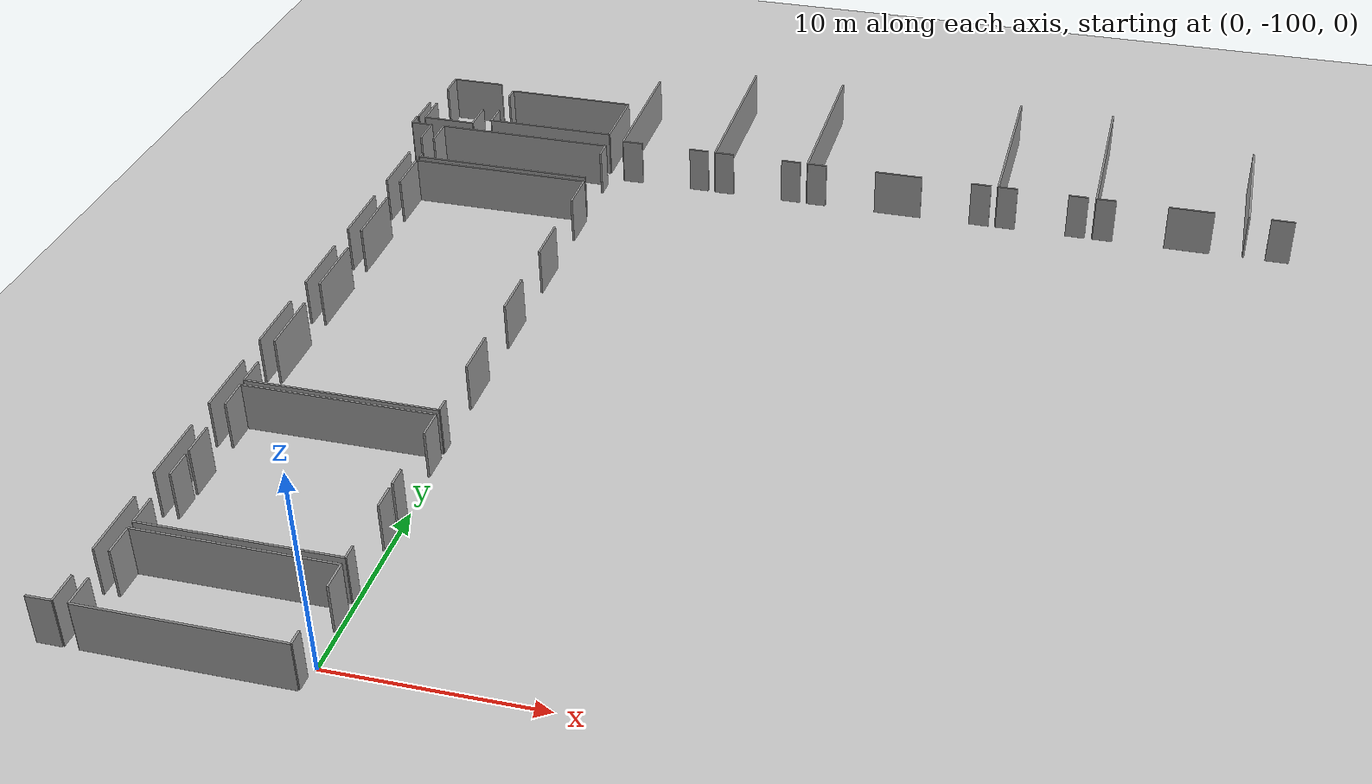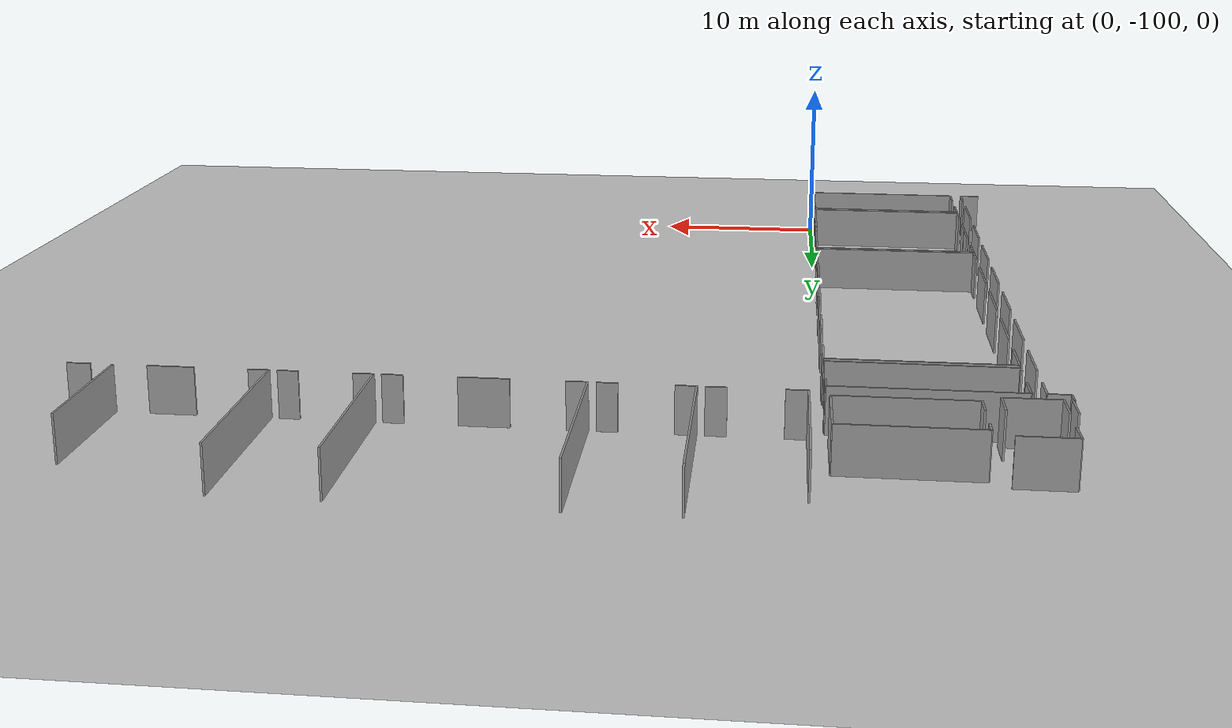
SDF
<sdf version="1.6">
 <world name="default">
  <model name="ground_plane">
   <static>1</static>
   <link name="link">
    <collision name="collision">
     <geometry><plane><normal>0 0 1</normal><size>100 100</size></plane></geometry>
     <surface><friction><ode><mu>100</mu><mu2>50</mu2></ode></friction></surface>
    </collision>
    <visual name="visual">
     <cast_shadows>0</cast_shadows>
     <geometry><plane><normal>0 0 1</normal><size>100 100</size></plane></geometry>
     <material>
      <script><uri>file://media/materials/scripts/gazebo.material</uri><name>Gazebo/Grey</name></script>
     </material>
    </visual>
   </link>
  </model>
  <model name="0510045922_A-40">
   <static>1</static>
   <link name="Wall_1500">
    <collision name="Wall_1500_Collision">
     <geometry><box><size>7.46851369384 0.1 2.5</size></box></geometry>
     <pose>3.73425684692 0 1.25 0 0 0</pose>
    </collision>
    <visual name="Wall_1500_Visual">
     <pose>3.73425684692 0 1.25 0 0 0</pose>
     <geometry><box><size>7.46851369384 0.1 2.5</size></box></geometry>
     <material>
      <script><uri>file://media/materials/scripts/gazebo.material</uri><name>Gazebo/Grey</name></script>
      <ambient>1 1 1 1</ambient>
     </material>
    </visual>
    <pose>134.74186948 -160.614195844 0 0 0 1.57079632679</pose>
   </link>
   <link name="Wall_1505">
    <collision name="Wall_1505_Collision">
     <geometry><box><size>1.0609391879 0.1 2.5</size></box></geometry>
     <pose>0.530469593951 0 1.25 0 0 0</pose>
    </collision>
    <visual name="Wall_1505_Visual">
     <pose>0.530469593951 0 1.25 0 0 0</pose>
     <geometry><box><size>1.0609391879 0.1 2.5</size></box></geometry>
     <material>
      <script><uri>file://media/materials/scripts/gazebo.material</uri><name>Gazebo/Grey</name></script>
      <ambient>1 1 1 1</ambient>
     </material>
    </visual>
    <pose>139.648014234 -160.59513249 0 0 0 3.14159265359</pose>
   </link>
   <link name="Wall_1506">
    <collision name="Wall_1506_Collision">
     <geometry><box><size>1.10253502987 0.1 2.5</size></box></geometry>
     <pose>0.551267514935 0 1.25 0 0 0</pose>
    </collision>
    <visual name="Wall_1506_Visual">
     <pose>0.551267514935 0 1.25 0 0 0</pose>
     <geometry><box><size>1.10253502987 0.1 2.5</size></box></geometry>
     <material>
      <script><uri>file://media/materials/scripts/gazebo.material</uri><name>Gazebo/Grey</name></script>
      <ambient>1 1 1 1</ambient>
     </material>
    </visual>
    <pose>135.84423969 -160.59513249 0 0 0 -3.12430131739</pose>
   </link>
   <link name="Wall_1507">
    <collision name="Wall_1507_Collision">
     <geometry><box><size>9.61174302599 0.1 2.5</size></box></geometry>
     <pose>4.80587151299 0 1.25 0 0 0</pose>
    </collision>
    <visual name="Wall_1507_Visual">
     <pose>4.80587151299 0 1.25 0 0 0</pose>
     <geometry><box><size>9.61174302599 0.1 2.5</size></box></geometry>
     <material>
      <script><uri>file://media/materials/scripts/gazebo.material</uri><name>Gazebo/Grey</name></script>
      <ambient>1 1 1 1</ambient>
     </material>
    </visual>
    <pose>140.048853022 -160.615975091 0 0 0 1.57079632679</pose>
   </link>
   <link name="Wall_1511">
    <collision name="Wall_1511_Collision">
     <geometry><box><size>1.05839740738 0.1 2.5</size></box></geometry>
     <pose>0.529198703692 0 1.25 0 0 0</pose>
    </collision>
    <visual name="Wall_1511_Visual">
     <pose>0.529198703692 0 1.25 0 0 0</pose>
     <geometry><box><size>1.05839740738 0.1 2.5</size></box></geometry>
     <material>
      <script><uri>file://media/materials/scripts/gazebo.material</uri><name>Gazebo/Grey</name></script>
      <ambient>1 1 1 1</ambient>
     </material>
    </visual>
    <pose>144.869593951 -160.597928449 0 0 0 3.14159265359</pose>
   </link>
   <link name="Wall_1512">
    <collision name="Wall_1512_Collision">
     <geometry><box><size>1.04101555836 0.1 2.5</size></box></geometry>
     <pose>0.520507779178 0 1.25 0 0 0</pose>
    </collision>
    <visual name="Wall_1512_Visual">
     <pose>0.520507779178 0 1.25 0 0 0</pose>
     <geometry><box><size>1.04101555836 0.1 2.5</size></box></geometry>
     <material>
      <script><uri>file://media/materials/scripts/gazebo.material</uri><name>Gazebo/Grey</name></script>
      <ambient>1 1 1 1</ambient>
     </material>
    </visual>
    <pose>141.089712143 -160.597928449 0 0 0 -3.12425617331</pose>
   </link>
   <link name="Wall_1513">
    <collision name="Wall_1513_Collision">
     <geometry><box><size>9.62902713351 0.1 2.5</size></box></geometry>
     <pose>4.81451356675 0 1.25 0 0 0</pose>
    </collision>
    <visual name="Wall_1513_Visual">
     <pose>4.81451356675 0 1.25 0 0 0</pose>
     <geometry><box><size>9.62902713351 0.1 2.5</size></box></geometry>
     <material>
      <script><uri>file://media/materials/scripts/gazebo.material</uri><name>Gazebo/Grey</name></script>
      <ambient>1 1 1 1</ambient>
     </material>
    </visual>
    <pose>145.278312258 -160.613179132 0 0 0 1.57079632679</pose>
   </link>
   <link name="Wall_1518">
    <collision name="Wall_1518_Collision">
     <geometry><box><size>1.07161466607 0.1 2.5</size></box></geometry>
     <pose>0.535807333037 0 1.25 0 0 0</pose>
    </collision>
    <visual name="Wall_1518_Visual">
     <pose>0.535807333037 0 1.25 0 0 0</pose>
     <geometry><box><size>1.07161466607 0.1 2.5</size></box></geometry>
     <material>
      <script><uri>file://media/materials/scripts/gazebo.material</uri><name>Gazebo/Grey</name></script>
      <ambient>1 1 1 1</ambient>
     </material>
    </visual>
    <pose>155.376297897 -160.609620639 0 0 0 3.14159265359</pose>
   </link>
   <link name="Wall_1519">
    <collision name="Wall_1519_Collision">
     <geometry><box><size>2.55601448815 0.1 2.5</size></box></geometry>
     <pose>1.27800724407 0 1.25 0 0 0</pose>
    </collision>
    <visual name="Wall_1519_Visual">
     <pose>1.27800724407 0 1.25 0 0 0</pose>
     <geometry><box><size>2.55601448815 0.1 2.5</size></box></geometry>
     <material>
      <script><uri>file://media/materials/scripts/gazebo.material</uri><name>Gazebo/Grey</name></script>
      <ambient>1 1 1 1</ambient>
     </material>
    </visual>
    <pose>151.615479443 -160.609620639 0 0 0 3.14159265359</pose>
   </link>
   <link name="Wall_1520">
    <collision name="Wall_1520_Collision">
     <geometry><box><size>1.05459074031 0.1 2.5</size></box></geometry>
     <pose>0.527295370157 0 1.25 0 0 0</pose>
    </collision>
    <visual name="Wall_1520_Visual">
     <pose>0.527295370157 0 1.25 0 0 0</pose>
     <geometry><box><size>1.05459074031 0.1 2.5</size></box></geometry>
     <material>
      <script><uri>file://media/materials/scripts/gazebo.material</uri><name>Gazebo/Grey</name></script>
      <ambient>1 1 1 1</ambient>
     </material>
    </visual>
    <pose>146.332896994 -160.609620639 0 0 0 -3.13821835933</pose>
   </link>
   <link name="Wall_1521">
    <collision name="Wall_1521_Collision">
     <geometry><box><size>9.59217131601 0.1 2.5</size></box></geometry>
     <pose>4.796085658 0 1.25 0 0 0</pose>
    </collision>
    <visual name="Wall_1521_Visual">
     <pose>4.796085658 0 1.25 0 0 0</pose>
     <geometry><box><size>9.59217131601 0.1 2.5</size></box></geometry>
     <material>
      <script><uri>file://media/materials/scripts/gazebo.material</uri><name>Gazebo/Grey</name></script>
      <ambient>1 1 1 1</ambient>
     </material>
    </visual>
    <pose>155.755785728 -160.597928449 0 0 0 1.57079632679</pose>
   </link>
   <link name="Wall_1525">
    <collision name="Wall_1525_Collision">
     <geometry><box><size>1.05560144881 0.1 2.5</size></box></geometry>
     <pose>0.527800724407 0 1.25 0 0 0</pose>
    </collision>
    <visual name="Wall_1525_Visual">
     <pose>0.527800724407 0 1.25 0 0 0</pose>
     <geometry><box><size>1.05560144881 0.1 2.5</size></box></geometry>
     <material>
      <script><uri>file://media/materials/scripts/gazebo.material</uri><name>Gazebo/Grey</name></script>
      <ambient>1 1 1 1</ambient>
     </material>
    </visual>
    <pose>160.581610218 -160.601995298 0 0 0 3.14159265359</pose>
   </link>
   <link name="Wall_1526">
    <collision name="Wall_1526_Collision">
     <geometry><box><size>1.04010453846 0.1 2.5</size></box></geometry>
     <pose>0.520052269229 0 1.25 0 0 0</pose>
    </collision>
    <visual name="Wall_1526_Visual">
     <pose>0.520052269229 0 1.25 0 0 0</pose>
     <geometry><box><size>1.04010453846 0.1 2.5</size></box></geometry>
     <material>
      <script><uri>file://media/materials/scripts/gazebo.material</uri><name>Gazebo/Grey</name></script>
      <ambient>1 1 1 1</ambient>
     </material>
    </visual>
    <pose>156.795882316 -160.601995298 0 0 0 3.13768260509</pose>
   </link>
   <link name="Wall_1527">
    <collision name="Wall_1527_Collision">
     <geometry><box><size>9.61301391625 0.1 2.5</size></box></geometry>
     <pose>4.80650695812 0 1.25 0 0 0</pose>
    </collision>
    <visual name="Wall_1527_Visual">
     <pose>4.80650695812 0 1.25 0 0 0</pose>
     <geometry><box><size>9.61301391625 0.1 2.5</size></box></geometry>
     <material>
      <script><uri>file://media/materials/scripts/gazebo.material</uri><name>Gazebo/Grey</name></script>
      <ambient>1 1 1 1</ambient>
     </material>
    </visual>
    <pose>160.998716401 -160.608603927 0 0 0 1.57079632679</pose>
   </link>
   <link name="Wall_1533">
    <collision name="Wall_1533_Collision">
     <geometry><box><size>2.40528690348 0.1 2.5</size></box></geometry>
     <pose>1.20264345174 0 1.25 0 0 0</pose>
    </collision>
    <visual name="Wall_1533_Visual">
     <pose>1.20264345174 0 1.25 0 0 0</pose>
     <geometry><box><size>2.40528690348 0.1 2.5</size></box></geometry>
     <material>
      <script><uri>file://media/materials/scripts/gazebo.material</uri><name>Gazebo/Grey</name></script>
      <ambient>1 1 1 1</ambient>
     </material>
    </visual>
    <pose>167.185156002 -160.583186122 0 0 0 3.14159265359</pose>
   </link>
   <link name="Wall_1534">
    <collision name="Wall_1534_Collision">
     <geometry><box><size>1.05158765225 0.1 2.5</size></box></geometry>
     <pose>0.525793826125 0 1.25 0 0 0</pose>
    </collision>
    <visual name="Wall_1534_Visual">
     <pose>0.525793826125 0 1.25 0 0 0</pose>
     <geometry><box><size>1.05158765225 0.1 2.5</size></box></geometry>
     <material>
      <script><uri>file://media/materials/scripts/gazebo.material</uri><name>Gazebo/Grey</name></script>
      <ambient>1 1 1 1</ambient>
     </material>
    </visual>
    <pose>162.049996823 -160.583186122 0 0 0 -3.11741941349</pose>
   </link>
   <link name="Wall_1535">
    <collision name="Wall_1535_Collision">
     <geometry><box><size>1.23606786554 0.1 2.5</size></box></geometry>
     <pose>0.61803393277 0 1.25 0 0 0</pose>
    </collision>
    <visual name="Wall_1535_Visual">
     <pose>0.61803393277 0 1.25 0 0 0</pose>
     <geometry><box><size>1.23606786554 0.1 2.5</size></box></geometry>
     <material>
      <script><uri>file://media/materials/scripts/gazebo.material</uri><name>Gazebo/Grey</name></script>
      <ambient>1 1 1 1</ambient>
     </material>
    </visual>
    <pose>171.310719959 -160.568189617 0 0 0 3.14159265359</pose>
   </link>
   <link name="Wall_1536">
    <collision name="Wall_1536_Collision">
     <geometry><box><size>6.88542924318 0.1 2.5</size></box></geometry>
     <pose>3.44271462159 0 1.25 0 0 0</pose>
    </collision>
    <visual name="Wall_1536_Visual">
     <pose>3.44271462159 0 1.25 0 0 0</pose>
     <geometry><box><size>6.88542924318 0.1 2.5</size></box></geometry>
     <material>
      <script><uri>file://media/materials/scripts/gazebo.material</uri><name>Gazebo/Grey</name></script>
      <ambient>1 1 1 1</ambient>
     </material>
    </visual>
    <pose>168.943813942 -160.568189617 0 0 0 1.57079632679</pose>
   </link>
   <link name="Wall_1753">
    <collision name="Wall_1753_Collision">
     <geometry><box><size>1.57361631823 0.1 2.5</size></box></geometry>
     <pose>0.786808159115 0 1.25 0 0 0</pose>
    </collision>
    <visual name="Wall_1753_Visual">
     <pose>0.786808159115 0 1.25 0 0 0</pose>
     <geometry><box><size>1.57361631823 0.1 2.5</size></box></geometry>
     <material>
      <script><uri>file://media/materials/scripts/gazebo.material</uri><name>Gazebo/Grey</name></script>
      <ambient>1 1 1 1</ambient>
     </material>
    </visual>
    <pose>124.356154286 -202.441990214 0 0 0 1.57079632679</pose>
   </link>
   <link name="Wall_1754">
    <collision name="Wall_1754_Collision">
     <geometry><box><size>1.56243248396 0.1 2.5</size></box></geometry>
     <pose>0.781216241978 0 1.25 0 0 0</pose>
    </collision>
    <visual name="Wall_1754_Visual">
     <pose>0.781216241978 0 1.25 0 0 0</pose>
     <geometry><box><size>1.56243248396 0.1 2.5</size></box></geometry>
     <material>
      <script><uri>file://media/materials/scripts/gazebo.material</uri><name>Gazebo/Grey</name></script>
      <ambient>1 1 1 1</ambient>
     </material>
    </visual>
    <pose>124.356154286 -199.202236767 0 0 0 1.57079632679</pose>
   </link>
   <link name="Wall_1755">
    <collision name="Wall_1755_Collision">
     <geometry><box><size>9.59395056237 0.1 2.5</size></box></geometry>
     <pose>4.79697528118 0 1.25 0 0 0</pose>
    </collision>
    <visual name="Wall_1755_Visual">
     <pose>4.79697528118 0 1.25 0 0 0</pose>
     <geometry><box><size>9.59395056237 0.1 2.5</size></box></geometry>
     <material>
      <script><uri>file://media/materials/scripts/gazebo.material</uri><name>Gazebo/Grey</name></script>
      <ambient>1 1 1 1</ambient>
     </material>
    </visual>
    <pose>124.356154286 -197.639804283 0 0 0 0.0</pose>
   </link>
   <link name="Wall_1756">
    <collision name="Wall_1756_Collision">
     <geometry><box><size>1.38349113554 0.1 2.5</size></box></geometry>
     <pose>0.69174556777 0 1.25 0 0 0</pose>
    </collision>
    <visual name="Wall_1756_Visual">
     <pose>0.69174556777 0 1.25 0 0 0</pose>
     <geometry><box><size>1.38349113554 0.1 2.5</size></box></geometry>
     <material>
      <script><uri>file://media/materials/scripts/gazebo.material</uri><name>Gazebo/Grey</name></script>
      <ambient>1 1 1 1</ambient>
     </material>
    </visual>
    <pose>133.950104848 -197.639804283 0 0 0 -1.57079632679</pose>
   </link>
   <link name="Wall_1757">
    <collision name="Wall_1757_Collision">
     <geometry><box><size>0.772955455296 0.1 2.5</size></box></geometry>
     <pose>0.386477727648 0 1.25 0 0 0</pose>
    </collision>
    <visual name="Wall_1757_Visual">
     <pose>0.386477727648 0 1.25 0 0 0</pose>
     <geometry><box><size>0.772955455296 0.1 2.5</size></box></geometry>
     <material>
      <script><uri>file://media/materials/scripts/gazebo.material</uri><name>Gazebo/Grey</name></script>
      <ambient>1 1 1 1</ambient>
     </material>
    </visual>
    <pose>133.950104848 -201.687081401 0 0 0 -1.57079632679</pose>
   </link>
   <link name="Wall_1758">
    <collision name="Wall_1758_Collision">
     <geometry><box><size>9.59396753562 0.1 2.5</size></box></geometry>
     <pose>4.79698376781 0 1.25 0 0 0</pose>
    </collision>
    <visual name="Wall_1758_Visual">
     <pose>4.79698376781 0 1.25 0 0 0</pose>
     <geometry><box><size>9.59396753562 0.1 2.5</size></box></geometry>
     <material>
      <script><uri>file://media/materials/scripts/gazebo.material</uri><name>Gazebo/Grey</name></script>
      <ambient>1 1 1 1</ambient>
     </material>
    </visual>
    <pose>133.950104848 -202.460036856 0 0 0 3.13971161196</pose>
   </link>
   <link name="Wall_1759">
    <collision name="Wall_1759_Collision">
     <geometry><box><size>1.55658638877 0.1 2.5</size></box></geometry>
     <pose>0.778293194383 0 1.25 0 0 0</pose>
    </collision>
    <visual name="Wall_1759_Visual">
     <pose>0.778293194383 0 1.25 0 0 0</pose>
     <geometry><box><size>1.55658638877 0.1 2.5</size></box></geometry>
     <material>
      <script><uri>file://media/materials/scripts/gazebo.material</uri><name>Gazebo/Grey</name></script>
      <ambient>1 1 1 1</ambient>
     </material>
    </visual>
    <pose>124.363271272 -197.218885429 0 0 0 1.57079632679</pose>
   </link>
   <link name="Wall_1760">
    <collision name="Wall_1760_Collision">
     <geometry><box><size>1.44144373133 0.1 2.5</size></box></geometry>
     <pose>0.720721865667 0 1.25 0 0 0</pose>
    </collision>
    <visual name="Wall_1760_Visual">
     <pose>0.720721865667 0 1.25 0 0 0</pose>
     <geometry><box><size>1.44144373133 0.1 2.5</size></box></geometry>
     <material>
      <script><uri>file://media/materials/scripts/gazebo.material</uri><name>Gazebo/Grey</name></script>
      <ambient>1 1 1 1</ambient>
     </material>
    </visual>
    <pose>124.363271272 -193.955239245 0 0 0 1.57079632679</pose>
   </link>
   <link name="Wall_1761">
    <collision name="Wall_1761_Collision">
     <geometry><box><size>1.2741945733 0.1 2.5</size></box></geometry>
     <pose>0.637097286649 0 1.25 0 0 0</pose>
    </collision>
    <visual name="Wall_1761_Visual">
     <pose>0.637097286649 0 1.25 0 0 0</pose>
     <geometry><box><size>1.2741945733 0.1 2.5</size></box></geometry>
     <material>
      <script><uri>file://media/materials/scripts/gazebo.material</uri><name>Gazebo/Grey</name></script>
      <ambient>1 1 1 1</ambient>
     </material>
    </visual>
    <pose>133.94985067 -192.513795514 0 0 0 -1.57079632679</pose>
   </link>
   <link name="Wall_1762">
    <collision name="Wall_1762_Collision">
     <geometry><box><size>0.754654635572 0.1 2.5</size></box></geometry>
     <pose>0.377327317786 0 1.25 0 0 0</pose>
    </collision>
    <visual name="Wall_1762_Visual">
     <pose>0.377327317786 0 1.25 0 0 0</pose>
     <geometry><box><size>0.754654635572 0.1 2.5</size></box></geometry>
     <material>
      <script><uri>file://media/materials/scripts/gazebo.material</uri><name>Gazebo/Grey</name></script>
      <ambient>1 1 1 1</ambient>
     </material>
    </visual>
    <pose>133.94985067 -196.458893055 0 0 0 -1.57079632679</pose>
   </link>
   <link name="Wall_1763">
    <collision name="Wall_1763_Collision">
     <geometry><box><size>9.58658088488 0.1 2.5</size></box></geometry>
     <pose>4.79329044244 0 1.25 0 0 0</pose>
    </collision>
    <visual name="Wall_1763_Visual">
     <pose>4.79329044244 0 1.25 0 0 0</pose>
     <geometry><box><size>9.58658088488 0.1 2.5</size></box></geometry>
     <material>
      <script><uri>file://media/materials/scripts/gazebo.material</uri><name>Gazebo/Grey</name></script>
      <ambient>1 1 1 1</ambient>
     </material>
    </visual>
    <pose>133.94985067 -197.21354769 0 0 0 -3.14103586077</pose>
   </link>
   <link name="Wall_1764">
    <collision name="Wall_1764_Collision">
     <geometry><box><size>9.59928830146 0.1 2.5</size></box></geometry>
     <pose>4.79964415073 0 1.25 0 0 0</pose>
    </collision>
    <visual name="Wall_1764_Visual">
     <pose>4.79964415073 0 1.25 0 0 0</pose>
     <geometry><box><size>9.59928830146 0.1 2.5</size></box></geometry>
     <material>
      <script><uri>file://media/materials/scripts/gazebo.material</uri><name>Gazebo/Grey</name></script>
      <ambient>1 1 1 1</ambient>
     </material>
    </visual>
    <pose>124.352849971 -187.09090678 0 0 0 0.0</pose>
   </link>
   <link name="Wall_1765">
    <collision name="Wall_1765_Collision">
     <geometry><box><size>1.45771112664 0.1 2.5</size></box></geometry>
     <pose>0.728855563322 0 1.25 0 0 0</pose>
    </collision>
    <visual name="Wall_1765_Visual">
     <pose>0.728855563322 0 1.25 0 0 0</pose>
     <geometry><box><size>1.45771112664 0.1 2.5</size></box></geometry>
     <material>
      <script><uri>file://media/materials/scripts/gazebo.material</uri><name>Gazebo/Grey</name></script>
      <ambient>1 1 1 1</ambient>
     </material>
    </visual>
    <pose>133.952138273 -187.09090678 0 0 0 -1.57079632679</pose>
   </link>
   <link name="Wall_1766">
    <collision name="Wall_1766_Collision">
     <geometry><box><size>1.02052487768 0.1 2.5</size></box></geometry>
     <pose>0.510262438838 0 1.25 0 0 0</pose>
    </collision>
    <visual name="Wall_1766_Visual">
     <pose>0.510262438838 0 1.25 0 0 0</pose>
     <geometry><box><size>1.02052487768 0.1 2.5</size></box></geometry>
     <material>
      <script><uri>file://media/materials/scripts/gazebo.material</uri><name>Gazebo/Grey</name></script>
      <ambient>1 1 1 1</ambient>
     </material>
    </visual>
    <pose>133.952138273 -191.209099574 0 0 0 -1.57079632679</pose>
   </link>
   <link name="Wall_1767">
    <collision name="Wall_1767_Collision">
     <geometry><box><size>1.75306602275 0.1 2.5</size></box></geometry>
     <pose>0.876533011374 0 1.25 0 0 0</pose>
    </collision>
    <visual name="Wall_1767_Visual">
     <pose>0.876533011374 0 1.25 0 0 0</pose>
     <geometry><box><size>1.75306602275 0.1 2.5</size></box></geometry>
     <material>
      <script><uri>file://media/materials/scripts/gazebo.material</uri><name>Gazebo/Grey</name></script>
      <ambient>1 1 1 1</ambient>
     </material>
    </visual>
    <pose>124.372421681 -192.229624452 0 0 0 1.57079632679</pose>
   </link>
   <link name="Wall_1768">
    <collision name="Wall_1768_Collision">
     <geometry><box><size>1.5986455769 0.1 2.5</size></box></geometry>
     <pose>0.799322788452 0 1.25 0 0 0</pose>
    </collision>
    <visual name="Wall_1768_Visual">
     <pose>0.799322788452 0 1.25 0 0 0</pose>
     <geometry><box><size>1.5986455769 0.1 2.5</size></box></geometry>
     <material>
      <script><uri>file://media/materials/scripts/gazebo.material</uri><name>Gazebo/Grey</name></script>
      <ambient>1 1 1 1</ambient>
     </material>
    </visual>
    <pose>124.372421681 -188.689432547 0 0 0 1.58303931499</pose>
   </link>
   <link name="Wall_1769">
    <collision name="Wall_1769_Collision">
     <geometry><box><size>1.47855372689 0.1 2.5</size></box></geometry>
     <pose>0.739276863443 0 1.25 0 0 0</pose>
    </collision>
    <visual name="Wall_1769_Visual">
     <pose>0.739276863443 0 1.25 0 0 0</pose>
     <geometry><box><size>1.47855372689 0.1 2.5</size></box></geometry>
     <material>
      <script><uri>file://media/materials/scripts/gazebo.material</uri><name>Gazebo/Grey</name></script>
      <ambient>1 1 1 1</ambient>
     </material>
    </visual>
    <pose>124.362254559 -186.728703056 0 0 0 1.57079632679</pose>
   </link>
   <link name="Wall_1770">
    <collision name="Wall_1770_Collision">
     <geometry><box><size>3.43496219101 0.1 2.5</size></box></geometry>
     <pose>1.71748109551 0 1.25 0 0 0</pose>
    </collision>
    <visual name="Wall_1770_Visual">
     <pose>1.71748109551 0 1.25 0 0 0</pose>
     <geometry><box><size>3.43496219101 0.1 2.5</size></box></geometry>
     <material>
      <script><uri>file://media/materials/scripts/gazebo.material</uri><name>Gazebo/Grey</name></script>
      <ambient>1 1 1 1</ambient>
     </material>
    </visual>
    <pose>124.362254559 -183.489457965 0 0 0 1.57079632679</pose>
   </link>
   <link name="Wall_1771">
    <collision name="Wall_1771_Collision">
     <geometry><box><size>3.51807841393 0.1 2.5</size></box></geometry>
     <pose>1.75903920696 0 1.25 0 0 0</pose>
    </collision>
    <visual name="Wall_1771_Visual">
     <pose>1.75903920696 0 1.25 0 0 0</pose>
     <geometry><box><size>3.51807841393 0.1 2.5</size></box></geometry>
     <material>
      <script><uri>file://media/materials/scripts/gazebo.material</uri><name>Gazebo/Grey</name></script>
      <ambient>1 1 1 1</ambient>
     </material>
    </visual>
    <pose>124.362254559 -178.282366398 0 0 0 1.57079632679</pose>
   </link>
   <link name="Wall_1772">
    <collision name="Wall_1772_Collision">
     <geometry><box><size>3.48833958188 0.1 2.5</size></box></geometry>
     <pose>1.74416979094 0 1.25 0 0 0</pose>
    </collision>
    <visual name="Wall_1772_Visual">
     <pose>1.74416979094 0 1.25 0 0 0</pose>
     <geometry><box><size>3.48833958188 0.1 2.5</size></box></geometry>
     <material>
      <script><uri>file://media/materials/scripts/gazebo.material</uri><name>Gazebo/Grey</name></script>
      <ambient>1 1 1 1</ambient>
     </material>
    </visual>
    <pose>124.362254559 -173.081629281 0 0 0 1.57079632679</pose>
   </link>
   <link name="Wall_1773">
    <collision name="Wall_1773_Collision">
     <geometry><box><size>2.43985511851 0.1 2.5</size></box></geometry>
     <pose>1.21992755926 0 1.25 0 0 0</pose>
    </collision>
    <visual name="Wall_1773_Visual">
     <pose>1.21992755926 0 1.25 0 0 0</pose>
     <geometry><box><size>2.43985511851 0.1 2.5</size></box></geometry>
     <material>
      <script><uri>file://media/materials/scripts/gazebo.material</uri><name>Gazebo/Grey</name></script>
      <ambient>1 1 1 1</ambient>
     </material>
    </visual>
    <pose>124.362254559 -167.834885938 0 0 0 1.57079632679</pose>
   </link>
   <link name="Wall_1774">
    <collision name="Wall_1774_Collision">
     <geometry><box><size>9.60996377963 0.1 2.5</size></box></geometry>
     <pose>4.80498188981 0 1.25 0 0 0</pose>
    </collision>
    <visual name="Wall_1774_Visual">
     <pose>4.80498188981 0 1.25 0 0 0</pose>
     <geometry><box><size>9.60996377963 0.1 2.5</size></box></geometry>
     <material>
      <script><uri>file://media/materials/scripts/gazebo.material</uri><name>Gazebo/Grey</name></script>
      <ambient>1 1 1 1</ambient>
     </material>
    </visual>
    <pose>124.362254559 -165.395030819 0 0 0 0.0</pose>
   </link>
   <link name="Wall_1775">
    <collision name="Wall_1775_Collision">
     <geometry><box><size>2.15161720785 0.1 2.5</size></box></geometry>
     <pose>1.07580860393 0 1.25 0 0 0</pose>
    </collision>
    <visual name="Wall_1775_Visual">
     <pose>1.07580860393 0 1.25 0 0 0</pose>
     <geometry><box><size>2.15161720785 0.1 2.5</size></box></geometry>
     <material>
      <script><uri>file://media/materials/scripts/gazebo.material</uri><name>Gazebo/Grey</name></script>
      <ambient>1 1 1 1</ambient>
     </material>
    </visual>
    <pose>133.972218339 -165.395030819 0 0 0 -1.57079632679</pose>
   </link>
   <link name="Wall_1776">
    <collision name="Wall_1776_Collision">
     <geometry><box><size>2.49831607041 0.1 2.5</size></box></geometry>
     <pose>1.2491580352 0 1.25 0 0 0</pose>
    </collision>
    <visual name="Wall_1776_Visual">
     <pose>1.2491580352 0 1.25 0 0 0</pose>
     <geometry><box><size>2.49831607041 0.1 2.5</size></box></geometry>
     <material>
      <script><uri>file://media/materials/scripts/gazebo.material</uri><name>Gazebo/Grey</name></script>
      <ambient>1 1 1 1</ambient>
     </material>
    </visual>
    <pose>133.972218339 -170.312359408 0 0 0 -1.57079632679</pose>
   </link>
   <link name="Wall_1777">
    <collision name="Wall_1777_Collision">
     <geometry><box><size>2.55372688568 0.1 2.5</size></box></geometry>
     <pose>1.27686344284 0 1.25 0 0 0</pose>
    </collision>
    <visual name="Wall_1777_Visual">
     <pose>1.27686344284 0 1.25 0 0 0</pose>
     <geometry><box><size>2.55372688568 0.1 2.5</size></box></geometry>
     <material>
      <script><uri>file://media/materials/scripts/gazebo.material</uri><name>Gazebo/Grey</name></script>
      <ambient>1 1 1 1</ambient>
     </material>
    </visual>
    <pose>133.972218339 -175.477765775 0 0 0 -1.57079632679</pose>
   </link>
   <link name="Wall_1778">
    <collision name="Wall_1778_Collision">
     <geometry><box><size>2.5488975027 0.1 2.5</size></box></geometry>
     <pose>1.27444875135 0 1.25 0 0 0</pose>
    </collision>
    <visual name="Wall_1778_Visual">
     <pose>1.27444875135 0 1.25 0 0 0</pose>
     <geometry><box><size>2.5488975027 0.1 2.5</size></box></geometry>
     <material>
      <script><uri>file://media/materials/scripts/gazebo.material</uri><name>Gazebo/Grey</name></script>
      <ambient>1 1 1 1</ambient>
     </material>
    </visual>
    <pose>133.972218339 -180.733659528 0 0 0 -1.57079632679</pose>
   </link>
   <link name="Wall_1779">
    <collision name="Wall_1779_Collision">
     <geometry><box><size>0.733049501176 0.1 2.5</size></box></geometry>
     <pose>0.366524750588 0 1.25 0 0 0</pose>
    </collision>
    <visual name="Wall_1779_Visual">
     <pose>0.366524750588 0 1.25 0 0 0</pose>
     <geometry><box><size>0.733049501176 0.1 2.5</size></box></geometry>
     <material>
      <script><uri>file://media/materials/scripts/gazebo.material</uri><name>Gazebo/Grey</name></script>
      <ambient>1 1 1 1</ambient>
     </material>
    </visual>
    <pose>133.972218339 -186.012175129 0 0 0 -1.57079632679</pose>
   </link>
   <link name="Wall_1780">
    <collision name="Wall_1780_Collision">
     <geometry><box><size>9.60997798167 0.1 2.5</size></box></geometry>
     <pose>4.80498899083 0 1.25 0 0 0</pose>
    </collision>
    <visual name="Wall_1780_Visual">
     <pose>4.80498899083 0 1.25 0 0 0</pose>
     <geometry><box><size>9.60997798167 0.1 2.5</size></box></geometry>
     <material>
      <script><uri>file://media/materials/scripts/gazebo.material</uri><name>Gazebo/Grey</name></script>
      <ambient>1 1 1 1</ambient>
     </material>
    </visual>
    <pose>133.972218339 -186.74522463 0 0 0 3.13987344242</pose>
   </link>
   <link name="Wall_1781">
    <collision name="Wall_1781_Collision">
     <geometry><box><size>9.56827857914 0.1 2.5</size></box></geometry>
     <pose>4.78413928957 0 1.25 0 0 0</pose>
    </collision>
    <visual name="Wall_1781_Visual">
     <pose>4.78413928957 0 1.25 0 0 0</pose>
     <geometry><box><size>9.56827857914 0.1 2.5</size></box></geometry>
     <material>
      <script><uri>file://media/materials/scripts/gazebo.material</uri><name>Gazebo/Grey</name></script>
      <ambient>1 1 1 1</ambient>
     </material>
    </visual>
    <pose>124.363271272 -161.336315689 0 0 0 0.0</pose>
   </link>
   <link name="Wall_1782">
    <collision name="Wall_1782_Collision">
     <geometry><box><size>0.965114062401 0.1 2.5</size></box></geometry>
     <pose>0.4825570312 0 1.25 0 0 0</pose>
    </collision>
    <visual name="Wall_1782_Visual">
     <pose>0.4825570312 0 1.25 0 0 0</pose>
     <geometry><box><size>0.965114062401 0.1 2.5</size></box></geometry>
     <material>
      <script><uri>file://media/materials/scripts/gazebo.material</uri><name>Gazebo/Grey</name></script>
      <ambient>1 1 1 1</ambient>
     </material>
    </visual>
    <pose>133.931549851 -161.336315689 0 0 0 -1.57079632679</pose>
   </link>
   <link name="Wall_1783">
    <collision name="Wall_1783_Collision">
     <geometry><box><size>9.55887399123 0.1 2.5</size></box></geometry>
     <pose>4.77943699562 0 1.25 0 0 0</pose>
    </collision>
    <visual name="Wall_1783_Visual">
     <pose>4.77943699562 0 1.25 0 0 0</pose>
     <geometry><box><size>9.55887399123 0.1 2.5</size></box></geometry>
     <material>
      <script><uri>file://media/materials/scripts/gazebo.material</uri><name>Gazebo/Grey</name></script>
      <ambient>1 1 1 1</ambient>
     </material>
    </visual>
    <pose>133.931549851 -164.993175319 0 0 0 3.14159265359</pose>
   </link>
   <link name="Wall_1784">
    <collision name="Wall_1784_Collision">
     <geometry><box><size>0.401601321726 0.1 2.5</size></box></geometry>
     <pose>0.200800660863 0 1.25 0 0 0</pose>
    </collision>
    <visual name="Wall_1784_Visual">
     <pose>0.200800660863 0 1.25 0 0 0</pose>
     <geometry><box><size>0.401601321726 0.1 2.5</size></box></geometry>
     <material>
      <script><uri>file://media/materials/scripts/gazebo.material</uri><name>Gazebo/Grey</name></script>
      <ambient>1 1 1 1</ambient>
     </material>
    </visual>
    <pose>124.372675859 -164.993175319 0 0 0 1.57079632679</pose>
   </link>
   <link name="Wall_1785">
    <collision name="Wall_1785_Collision">
     <geometry><box><size>1.57262772681 0.1 2.5</size></box></geometry>
     <pose>0.786313863406 0 1.25 0 0 0</pose>
    </collision>
    <visual name="Wall_1785_Visual">
     <pose>0.786313863406 0 1.25 0 0 0</pose>
     <geometry><box><size>1.57262772681 0.1 2.5</size></box></geometry>
     <material>
      <script><uri>file://media/materials/scripts/gazebo.material</uri><name>Gazebo/Grey</name></script>
      <ambient>1 1 1 1</ambient>
     </material>
    </visual>
    <pose>124.372675859 -162.908915295 0 0 0 1.57677653674</pose>
   </link>
   <link name="Wall_1790">
    <collision name="Wall_1790_Collision">
     <geometry><box><size>1.74111965432 0.1 2.5</size></box></geometry>
     <pose>0.870559827159 0 1.25 0 0 0</pose>
    </collision>
    <visual name="Wall_1790_Visual">
     <pose>0.870559827159 0 1.25 0 0 0</pose>
     <geometry><box><size>1.74111965432 0.1 2.5</size></box></geometry>
     <material>
      <script><uri>file://media/materials/scripts/gazebo.material</uri><name>Gazebo/Grey</name></script>
      <ambient>1 1 1 1</ambient>
     </material>
    </visual>
    <pose>122.569790939 -158.865705026 0 0 0 -1.57079632679</pose>
   </link>
   <link name="Wall_1791">
    <collision name="Wall_1791_Collision">
     <geometry><box><size>0.082353688759 0.1 2.5</size></box></geometry>
     <pose>0.0411768443795 0 1.25 0 0 0</pose>
    </collision>
    <visual name="Wall_1791_Visual">
     <pose>0.0411768443795 0 1.25 0 0 0</pose>
     <geometry><box><size>0.082353688759 0.1 2.5</size></box></geometry>
     <material>
      <script><uri>file://media/materials/scripts/gazebo.material</uri><name>Gazebo/Grey</name></script>
      <ambient>1 1 1 1</ambient>
     </material>
    </visual>
    <pose>122.569790939 -160.606824681 0 0 0 3.14159265359</pose>
   </link>
   <link name="Wall_1792">
    <collision name="Wall_1792_Collision">
     <geometry><box><size>0.739149774417 0.1 2.5</size></box></geometry>
     <pose>0.369574887209 0 1.25 0 0 0</pose>
    </collision>
    <visual name="Wall_1792_Visual">
     <pose>0.369574887209 0 1.25 0 0 0</pose>
     <geometry><box><size>0.739149774417 0.1 2.5</size></box></geometry>
     <material>
      <script><uri>file://media/materials/scripts/gazebo.material</uri><name>Gazebo/Grey</name></script>
      <ambient>1 1 1 1</ambient>
     </material>
    </visual>
    <pose>122.48743725 -160.606824681 0 0 0 -1.57079632679</pose>
   </link>
   <link name="Wall_1793">
    <collision name="Wall_1793_Collision">
     <geometry><box><size>1.14405541082 0.1 2.5</size></box></geometry>
     <pose>0.572027705408 0 1.25 0 0 0</pose>
    </collision>
    <visual name="Wall_1793_Visual">
     <pose>0.572027705408 0 1.25 0 0 0</pose>
     <geometry><box><size>1.14405541082 0.1 2.5</size></box></geometry>
     <material>
      <script><uri>file://media/materials/scripts/gazebo.material</uri><name>Gazebo/Grey</name></script>
      <ambient>1 1 1 1</ambient>
     </material>
    </visual>
    <pose>122.48743725 -161.345974455 0 0 0 0.0</pose>
   </link>
   <link name="Wall_1794">
    <collision name="Wall_1794_Collision">
     <geometry><box><size>1.5769206329 0.1 2.5</size></box></geometry>
     <pose>0.788460316452 0 1.25 0 0 0</pose>
    </collision>
    <visual name="Wall_1794_Visual">
     <pose>0.788460316452 0 1.25 0 0 0</pose>
     <geometry><box><size>1.5769206329 0.1 2.5</size></box></geometry>
     <material>
      <script><uri>file://media/materials/scripts/gazebo.material</uri><name>Gazebo/Grey</name></script>
      <ambient>1 1 1 1</ambient>
     </material>
    </visual>
    <pose>123.631492661 -161.345974455 0 0 0 -1.57079632679</pose>
   </link>
   <link name="Wall_1795">
    <collision name="Wall_1795_Collision">
     <geometry><box><size>3.25246234988 0.1 2.5</size></box></geometry>
     <pose>1.62623117494 0 1.25 0 0 0</pose>
    </collision>
    <visual name="Wall_1795_Visual">
     <pose>1.62623117494 0 1.25 0 0 0</pose>
     <geometry><box><size>3.25246234988 0.1 2.5</size></box></geometry>
     <material>
      <script><uri>file://media/materials/scripts/gazebo.material</uri><name>Gazebo/Grey</name></script>
      <ambient>1 1 1 1</ambient>
     </material>
    </visual>
    <pose>123.631492661 -164.638088581 0 0 0 -1.57079632679</pose>
   </link>
   <link name="Wall_1796">
    <collision name="Wall_1796_Collision">
     <geometry><box><size>3.53282074093 0.1 2.5</size></box></geometry>
     <pose>1.76641037046 0 1.25 0 0 0</pose>
    </collision>
    <visual name="Wall_1796_Visual">
     <pose>1.76641037046 0 1.25 0 0 0</pose>
     <geometry><box><size>3.53282074093 0.1 2.5</size></box></geometry>
     <material>
      <script><uri>file://media/materials/scripts/gazebo.material</uri><name>Gazebo/Grey</name></script>
      <ambient>1 1 1 1</ambient>
     </material>
    </visual>
    <pose>123.631492661 -169.571176209 0 0 0 -1.57079632679</pose>
   </link>
   <link name="Wall_1797">
    <collision name="Wall_1797_Collision">
     <geometry><box><size>3.53790430196 0.1 2.5</size></box></geometry>
     <pose>1.76895215098 0 1.25 0 0 0</pose>
    </collision>
    <visual name="Wall_1797_Visual">
     <pose>1.76895215098 0 1.25 0 0 0</pose>
     <geometry><box><size>3.53790430196 0.1 2.5</size></box></geometry>
     <material>
      <script><uri>file://media/materials/scripts/gazebo.material</uri><name>Gazebo/Grey</name></script>
      <ambient>1 1 1 1</ambient>
     </material>
    </visual>
    <pose>123.631492661 -174.778267777 0 0 0 -1.57079632679</pose>
   </link>
   <link name="Wall_1798">
    <collision name="Wall_1798_Collision">
     <geometry><box><size>3.50765711381 0.1 2.5</size></box></geometry>
     <pose>1.7538285569 0 1.25 0 0 0</pose>
    </collision>
    <visual name="Wall_1798_Visual">
     <pose>1.7538285569 0 1.25 0 0 0</pose>
     <geometry><box><size>3.50765711381 0.1 2.5</size></box></geometry>
     <material>
      <script><uri>file://media/materials/scripts/gazebo.material</uri><name>Gazebo/Grey</name></script>
      <ambient>1 1 1 1</ambient>
     </material>
    </visual>
    <pose>123.631492661 -180.059070979 0 0 0 -1.57079632679</pose>
   </link>
   <link name="Wall_1799">
    <collision name="Wall_1799_Collision">
     <geometry><box><size>3.52595793353 0.1 2.5</size></box></geometry>
     <pose>1.76297896677 0 1.25 0 0 0</pose>
    </collision>
    <visual name="Wall_1799_Visual">
     <pose>1.76297896677 0 1.25 0 0 0</pose>
     <geometry><box><size>3.52595793353 0.1 2.5</size></box></geometry>
     <material>
      <script><uri>file://media/materials/scripts/gazebo.material</uri><name>Gazebo/Grey</name></script>
      <ambient>1 1 1 1</ambient>
     </material>
    </visual>
    <pose>123.631492661 -185.272008642 0 0 0 -1.57079632679</pose>
   </link>
   <link name="Wall_1800">
    <collision name="Wall_1800_Collision">
     <geometry><box><size>3.52290779691 0.1 2.5</size></box></geometry>
     <pose>1.76145389846 0 1.25 0 0 0</pose>
    </collision>
    <visual name="Wall_1800_Visual">
     <pose>1.76145389846 0 1.25 0 0 0</pose>
     <geometry><box><size>3.52290779691 0.1 2.5</size></box></geometry>
     <material>
      <script><uri>file://media/materials/scripts/gazebo.material</uri><name>Gazebo/Grey</name></script>
      <ambient>1 1 1 1</ambient>
     </material>
    </visual>
    <pose>123.631492661 -190.486471373 0 0 0 -1.57079632679</pose>
   </link>
   <link name="Wall_1801">
    <collision name="Wall_1801_Collision">
     <geometry><box><size>3.52519539938 0.1 2.5</size></box></geometry>
     <pose>1.76259769969 0 1.25 0 0 0</pose>
    </collision>
    <visual name="Wall_1801_Visual">
     <pose>1.76259769969 0 1.25 0 0 0</pose>
     <geometry><box><size>3.52519539938 0.1 2.5</size></box></geometry>
     <material>
      <script><uri>file://media/materials/scripts/gazebo.material</uri><name>Gazebo/Grey</name></script>
      <ambient>1 1 1 1</ambient>
     </material>
    </visual>
    <pose>123.631492661 -195.698646502 0 0 0 -1.57079632679</pose>
   </link>
   <link name="Wall_1802">
    <collision name="Wall_1802_Collision">
     <geometry><box><size>1.5690411133 0.1 2.5</size></box></geometry>
     <pose>0.78452055665 0 1.25 0 0 0</pose>
    </collision>
    <visual name="Wall_1802_Visual">
     <pose>0.78452055665 0 1.25 0 0 0</pose>
     <geometry><box><size>1.5690411133 0.1 2.5</size></box></geometry>
     <material>
      <script><uri>file://media/materials/scripts/gazebo.material</uri><name>Gazebo/Grey</name></script>
      <ambient>1 1 1 1</ambient>
     </material>
    </visual>
    <pose>123.631492661 -200.87828684 0 0 0 -1.57079632679</pose>
   </link>
   <link name="Wall_1803">
    <collision name="Wall_1803_Collision">
     <geometry><box><size>1.20582067738 0.1 2.5</size></box></geometry>
     <pose>0.602910338692 0 1.25 0 0 0</pose>
    </collision>
    <visual name="Wall_1803_Visual">
     <pose>0.602910338692 0 1.25 0 0 0</pose>
     <geometry><box><size>1.20582067738 0.1 2.5</size></box></geometry>
     <material>
      <script><uri>file://media/materials/scripts/gazebo.material</uri><name>Gazebo/Grey</name></script>
      <ambient>1 1 1 1</ambient>
     </material>
    </visual>
    <pose>123.631492661 -202.447327953 0 0 0 3.14159265359</pose>
   </link>
   <link name="Wall_1833">
    <collision name="Wall_1833_Collision">
     <geometry><box><size>6.98989642244 0.1 2.5</size></box></geometry>
     <pose>3.49494821122 0 1.25 0 0 0</pose>
    </collision>
    <visual name="Wall_1833_Visual">
     <pose>3.49494821122 0 1.25 0 0 0</pose>
     <geometry><box><size>6.98989642244 0.1 2.5</size></box></geometry>
     <material>
      <script><uri>file://media/materials/scripts/gazebo.material</uri><name>Gazebo/Grey</name></script>
      <ambient>1 1 1 1</ambient>
     </material>
    </visual>
    <pose>126.757628519 -156.334091631 0 0 0 0.0</pose>
   </link>
   <link name="Wall_1834">
    <collision name="Wall_1834_Collision">
     <geometry><box><size>3.70540763805 0.1 2.5</size></box></geometry>
     <pose>1.85270381903 0 1.25 0 0 0</pose>
    </collision>
    <visual name="Wall_1834_Visual">
     <pose>1.85270381903 0 1.25 0 0 0</pose>
     <geometry><box><size>3.70540763805 0.1 2.5</size></box></geometry>
     <material>
      <script><uri>file://media/materials/scripts/gazebo.material</uri><name>Gazebo/Grey</name></script>
      <ambient>1 1 1 1</ambient>
     </material>
    </visual>
    <pose>133.747524941 -156.334091631 0 0 0 -1.57079632679</pose>
   </link>
   <link name="Wall_1835">
    <collision name="Wall_1835_Collision">
     <geometry><box><size>6.9832877931 0.1 2.5</size></box></geometry>
     <pose>3.49164389655 0 1.25 0 0 0</pose>
    </collision>
    <visual name="Wall_1835_Visual">
     <pose>3.49164389655 0 1.25 0 0 0</pose>
     <geometry><box><size>6.9832877931 0.1 2.5</size></box></geometry>
     <material>
      <script><uri>file://media/materials/scripts/gazebo.material</uri><name>Gazebo/Grey</name></script>
      <ambient>1 1 1 1</ambient>
     </material>
    </visual>
    <pose>133.747524941 -160.039499269 0 0 0 3.14159265359</pose>
   </link>
   <link name="Wall_1836">
    <collision name="Wall_1836_Collision">
     <geometry><box><size>1.20709156764 0.1 2.5</size></box></geometry>
     <pose>0.603545783822 0 1.25 0 0 0</pose>
    </collision>
    <visual name="Wall_1836_Visual">
     <pose>0.603545783822 0 1.25 0 0 0</pose>
     <geometry><box><size>1.20709156764 0.1 2.5</size></box></geometry>
     <material>
      <script><uri>file://media/materials/scripts/gazebo.material</uri><name>Gazebo/Grey</name></script>
      <ambient>1 1 1 1</ambient>
     </material>
    </visual>
    <pose>126.764237148 -160.039499269 0 0 0 1.57079632679</pose>
   </link>
   <link name="Wall_1837">
    <collision name="Wall_1837_Collision">
     <geometry><box><size>0.745533516707 0.1 2.5</size></box></geometry>
     <pose>0.372766758353 0 1.25 0 0 0</pose>
    </collision>
    <visual name="Wall_1837_Visual">
     <pose>0.372766758353 0 1.25 0 0 0</pose>
     <geometry><box><size>0.745533516707 0.1 2.5</size></box></geometry>
     <material>
      <script><uri>file://media/materials/scripts/gazebo.material</uri><name>Gazebo/Grey</name></script>
      <ambient>1 1 1 1</ambient>
     </material>
    </visual>
    <pose>126.764237148 -157.079595857 0 0 0 1.57966073832</pose>
   </link>
   <link name="Wall_1838">
    <collision name="Wall_1838_Collision">
     <geometry><box><size>2.87068691618 0.1 2.5</size></box></geometry>
     <pose>1.43534345809 0 1.25 0 0 0</pose>
    </collision>
    <visual name="Wall_1838_Visual">
     <pose>1.43534345809 0 1.25 0 0 0</pose>
     <geometry><box><size>2.87068691618 0.1 2.5</size></box></geometry>
     <material>
      <script><uri>file://media/materials/scripts/gazebo.material</uri><name>Gazebo/Grey</name></script>
      <ambient>1 1 1 1</ambient>
     </material>
    </visual>
    <pose>122.952074728 -155.725589375 0 0 0 0.0</pose>
   </link>
   <link name="Wall_1840">
    <collision name="Wall_1840_Collision">
     <geometry><box><size>1.72103958823 0.1 2.5</size></box></geometry>
     <pose>0.860519794116 0 1.25 0 0 0</pose>
    </collision>
    <visual name="Wall_1840_Visual">
     <pose>0.860519794116 0 1.25 0 0 0</pose>
     <geometry><box><size>1.72103958823 0.1 2.5</size></box></geometry>
     <material>
      <script><uri>file://media/materials/scripts/gazebo.material</uri><name>Gazebo/Grey</name></script>
      <ambient>1 1 1 1</ambient>
     </material>
    </visual>
    <pose>125.822761645 -158.887818517 0 0 0 -1.57079632679</pose>
   </link>
   <link name="Wall_1841">
    <collision name="Wall_1841_Collision">
     <geometry><box><size>2.84882760374 0.1 2.5</size></box></geometry>
     <pose>1.42441380187 0 1.25 0 0 0</pose>
    </collision>
    <visual name="Wall_1841_Visual">
     <pose>1.42441380187 0 1.25 0 0 0</pose>
     <geometry><box><size>2.84882760374 0.1 2.5</size></box></geometry>
     <material>
      <script><uri>file://media/materials/scripts/gazebo.material</uri><name>Gazebo/Grey</name></script>
      <ambient>1 1 1 1</ambient>
     </material>
    </visual>
    <pose>125.822761645 -160.608858105 0 0 0 3.14159265359</pose>
   </link>
   <link name="Wall_1842">
    <collision name="Wall_1842_Collision">
     <geometry><box><size>1.77721293766 0.1 2.5</size></box></geometry>
     <pose>0.888606468831 0 1.25 0 0 0</pose>
    </collision>
    <visual name="Wall_1842_Visual">
     <pose>0.888606468831 0 1.25 0 0 0</pose>
     <geometry><box><size>1.77721293766 0.1 2.5</size></box></geometry>
     <material>
      <script><uri>file://media/materials/scripts/gazebo.material</uri><name>Gazebo/Grey</name></script>
      <ambient>1 1 1 1</ambient>
     </material>
    </visual>
    <pose>122.973934041 -160.608858105 0 0 0 1.57079632679</pose>
   </link>
   <link name="Wall_1843">
    <collision name="Wall_1843_Collision">
     <geometry><box><size>1.37426040833 0.1 2.5</size></box></geometry>
     <pose>0.687130204166 0 1.25 0 0 0</pose>
    </collision>
    <visual name="Wall_1843_Visual">
     <pose>0.687130204166 0 1.25 0 0 0</pose>
     <geometry><box><size>1.37426040833 0.1 2.5</size></box></geometry>
     <material>
      <script><uri>file://media/materials/scripts/gazebo.material</uri><name>Gazebo/Grey</name></script>
      <ambient>1 1 1 1</ambient>
     </material>
    </visual>
    <pose>122.973934041 -157.099675923 0 0 0 1.58670323511</pose>
   </link>
   <pose>-134.15 101.210036856 0 0 0 0</pose>
  </model>
 </world>
</sdf>
